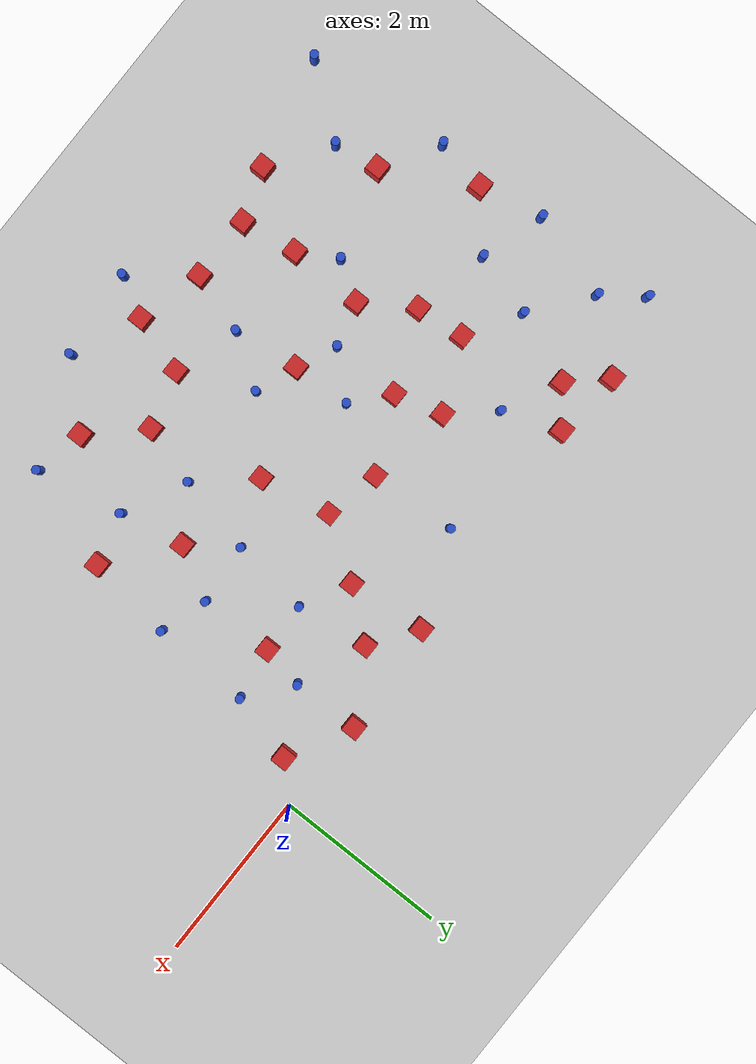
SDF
<sdf version="1.6">
 <world name="default">
  <model name="ground_plane">
   <static>1</static>
   <link name="link">
    <collision name="collision">
     <geometry><plane><normal>0 0 1</normal><size>100 100</size></plane></geometry>
     <surface><friction><ode><mu>100</mu><mu2>50</mu2></ode></friction></surface>
    </collision>
    <visual name="visual">
     <cast_shadows>0</cast_shadows>
     <geometry><plane><normal>0 0 1</normal><size>100 100</size></plane></geometry>
     <material>
      <ambient>1.0 1.0 1.0 1.0</ambient>
      <diffuse>0.8 0.8 0.8 1.0</diffuse>
      <specular>0.01 0.01 0.01 1.000000</specular>
     </material>
    </visual>
   </link>
  </model>
  <model name="square_post_obstacle2">
   <static>true</static>
   <pose>-1.51511103685 -2.70008795254 1.91545236811e-07 -7.35059704564e-06 1.12565212e-07 2.39332434364e-05</pose>
   <link name="link">
    <pose>0 0 0.25 0 -0 0</pose>
    <inertial>
     <mass>100</mass>
     <inertia>
      <ixx>0.166667</ixx>
      <ixy>0</ixy>
      <ixz>0</ixz>
      <iyy>0.166667</iyy>
      <iyz>0</iyz>
      <izz>0.166667</izz>
     </inertia>
    </inertial>
    <collision name="collision"><geometry><box><size>.2 .2 .5</size></box></geometry></collision>
    <visual name="visual">
     <geometry><box><size>.2 .2 .5</size></box></geometry>
     <material>
      <script><name>Gazebo/Red</name><uri>file://media/materials/scripts/gazebo.material</uri></script>
     </material>
    </visual>
   </link>
  </model>
  <model name="square_post_obstacle4">
   <static>true</static>
   <pose>-2.33833968254 -0.990381652567 1.91545236811e-07 -7.35059704564e-06 1.12565212e-07 2.39332434364e-05</pose>
   <link name="link">
    <pose>0 0 0.25 0 -0 0</pose>
    <inertial>
     <mass>100</mass>
     <inertia>
      <ixx>0.166667</ixx>
      <ixy>0</ixy>
      <ixz>0</ixz>
      <iyy>0.166667</iyy>
      <iyz>0</iyz>
      <izz>0.166667</izz>
     </inertia>
    </inertial>
    <collision name="collision"><geometry><box><size>.2 .2 .5</size></box></geometry></collision>
    <visual name="visual">
     <geometry><box><size>.2 .2 .5</size></box></geometry>
     <material>
      <script><name>Gazebo/Red</name><uri>file://media/materials/scripts/gazebo.material</uri></script>
     </material>
    </visual>
   </link>
  </model>
  <model name="pole_obstacle7">
   <static>true</static>
   <pose>-5.82277661758 -1.37810416968 7.38925637345e-09 -8.471706928e-08 1.24976765134e-08 -1.74513093015e-07</pose>
   <link name="link">
    <pose>0 0 0.3 0 -0 0</pose>
    <inertial>
     <mass>1</mass>
     <inertia><ixx>0.145833</ixx><ixy>0</ixy><ixz>0</ixz><iyy>0.145833</iyy><iyz>0</iyz><izz>0.125</izz></inertia>
    </inertial>
    <collision name="collision">
     <geometry><cylinder><radius>0.05</radius><length>.6</length></cylinder></geometry>
    </collision>
    <visual name="visual">
     <geometry><cylinder><radius>0.05</radius><length>.6</length></cylinder></geometry>
     <material>
      <script><name>Gazebo/Blue</name><uri>file://media/materials/scripts/gazebo.material</uri></script>
     </material>
    </visual>
   </link>
  </model>
  <model name="pole_obstacle8">
   <static>true</static>
   <pose>-1.16569219605 -4.44366886256 7.38925637345e-09 -8.47170692799e-08 1.24976765033e-08 -1.74513093018e-07</pose>
   <link name="link">
    <pose>0 0 0.3 0 -0 0</pose>
    <inertial>
     <mass>1</mass>
     <inertia><ixx>0.145833</ixx><ixy>0</ixy><ixz>0</ixz><iyy>0.145833</iyy><iyz>0</iyz><izz>0.125</izz></inertia>
    </inertial>
    <collision name="collision">
     <geometry><cylinder><radius>0.05</radius><length>.6</length></cylinder></geometry>
    </collision>
    <visual name="visual">
     <geometry><cylinder><radius>0.05</radius><length>.6</length></cylinder></geometry>
     <material>
      <script><name>Gazebo/Blue</name><uri>file://media/materials/scripts/gazebo.material</uri></script>
     </material>
    </visual>
   </link>
  </model>
  <model name="pole_obstacle25">
   <static>true</static>
   <pose>-3.83814363282 -2.26992411811 7.38925637345e-09 -8.471706928e-08 1.24976765098e-08 -1.74513093016e-07</pose>
   <link name="link">
    <pose>0 0 0.3 0 -0 0</pose>
    <inertial>
     <mass>1</mass>
     <inertia><ixx>0.145833</ixx><ixy>0</ixy><ixz>0</ixz><iyy>0.145833</iyy><iyz>0</iyz><izz>0.125</izz></inertia>
    </inertial>
    <collision name="collision">
     <geometry><cylinder><radius>0.05</radius><length>.6</length></cylinder></geometry>
    </collision>
    <visual name="visual">
     <geometry><cylinder><radius>0.05</radius><length>.6</length></cylinder></geometry>
     <material>
      <script><name>Gazebo/Blue</name><uri>file://media/materials/scripts/gazebo.material</uri></script>
     </material>
    </visual>
   </link>
  </model>
  <model name="square_post_obstacle23">
   <static>true</static>
   <pose>-1.75846465209 -4.32358583733 1.91545236811e-07 -7.35059704564e-06 1.12565212e-07 2.39332434364e-05</pose>
   <link name="link">
    <pose>0 0 0.25 0 -0 0</pose>
    <inertial>
     <mass>100</mass>
     <inertia>
      <ixx>0.166667</ixx>
      <ixy>0</ixy>
      <ixz>0</ixz>
      <iyy>0.166667</iyy>
      <iyz>0</iyz>
      <izz>0.166667</izz>
     </inertia>
    </inertial>
    <collision name="collision"><geometry><box><size>.2 .2 .5</size></box></geometry></collision>
    <visual name="visual">
     <geometry><box><size>.2 .2 .5</size></box></geometry>
     <material>
      <script><name>Gazebo/Red</name><uri>file://media/materials/scripts/gazebo.material</uri></script>
     </material>
    </visual>
   </link>
  </model>
  <model name="pole_obstacle32">
   <static>true</static>
   <pose>-5.97992895814 -4.13236150903 7.38925637345e-09 -8.47170692796e-08 1.24976764786e-08 -1.74513093032e-07</pose>
   <link name="link">
    <pose>0 0 0.3 0 -0 0</pose>
    <inertial>
     <mass>1</mass>
     <inertia><ixx>0.145833</ixx><ixy>0</ixy><ixz>0</ixz><iyy>0.145833</iyy><iyz>0</iyz><izz>0.125</izz></inertia>
    </inertial>
    <collision name="collision">
     <geometry><cylinder><radius>0.05</radius><length>.6</length></cylinder></geometry>
    </collision>
    <visual name="visual">
     <geometry><cylinder><radius>0.05</radius><length>.6</length></cylinder></geometry>
     <material>
      <script><name>Gazebo/Blue</name><uri>file://media/materials/scripts/gazebo.material</uri></script>
     </material>
    </visual>
   </link>
  </model>
  <model name="pole_obstacle42">
   <static>true</static>
   <pose>-6.71349716773 -3.21704806443 7.38925637345e-09 -8.47170692798e-08 1.24976764937e-08 -1.74513093023e-07</pose>
   <link name="link">
    <pose>0 0 0.3 0 -0 0</pose>
    <inertial>
     <mass>1</mass>
     <inertia><ixx>0.145833</ixx><ixy>0</ixy><ixz>0</ixz><iyy>0.145833</iyy><iyz>0</iyz><izz>0.125</izz></inertia>
    </inertial>
    <collision name="collision">
     <geometry><cylinder><radius>0.05</radius><length>.6</length></cylinder></geometry>
    </collision>
    <visual name="visual">
     <geometry><cylinder><radius>0.05</radius><length>.6</length></cylinder></geometry>
     <material>
      <script><name>Gazebo/Blue</name><uri>file://media/materials/scripts/gazebo.material</uri></script>
     </material>
    </visual>
   </link>
  </model>
  <model name="pole_obstacle46">
   <static>true</static>
   <pose>-6.02859896482 -2.10779490157 7.38925637345e-09 -8.47170692798e-08 1.24976764937e-08 -1.74513093023e-07</pose>
   <link name="link">
    <pose>0 0 0.3 0 -0 0</pose>
    <inertial>
     <mass>1</mass>
     <inertia><ixx>0.145833</ixx><ixy>0</ixy><ixz>0</ixz><iyy>0.145833</iyy><iyz>0</iyz><izz>0.125</izz></inertia>
    </inertial>
    <collision name="collision">
     <geometry><cylinder><radius>0.05</radius><length>.6</length></cylinder></geometry>
    </collision>
    <visual name="visual">
     <geometry><cylinder><radius>0.05</radius><length>.6</length></cylinder></geometry>
     <material>
      <script><name>Gazebo/Blue</name><uri>file://media/materials/scripts/gazebo.material</uri></script>
     </material>
    </visual>
   </link>
  </model>
  <model name="pole_obstacle48">
   <static>true</static>
   <pose>-6.57164669023 -4.90194749988 7.38925637345e-09 -8.47170692796e-08 1.24976764786e-08 -1.74513093032e-07</pose>
   <link name="link">
    <pose>0 0 0.3 0 -0 0</pose>
    <inertial>
     <mass>1</mass>
     <inertia><ixx>0.145833</ixx><ixy>0</ixy><ixz>0</ixz><iyy>0.145833</iyy><iyz>0</iyz><izz>0.125</izz></inertia>
    </inertial>
    <collision name="collision">
     <geometry><cylinder><radius>0.05</radius><length>.6</length></cylinder></geometry>
    </collision>
    <visual name="visual">
     <geometry><cylinder><radius>0.05</radius><length>.6</length></cylinder></geometry>
     <material>
      <script><name>Gazebo/Blue</name><uri>file://media/materials/scripts/gazebo.material</uri></script>
     </material>
    </visual>
   </link>
  </model>
  <model name="pole_obstacle55">
   <static>true</static>
   <pose>-6.76681579439 -1.87685258984 7.38925637345e-09 -8.471706928e-08 1.24976765134e-08 -1.74513093015e-07</pose>
   <link name="link">
    <pose>0 0 0.3 0 -0 0</pose>
    <inertial>
     <mass>1</mass>
     <inertia><ixx>0.145833</ixx><ixy>0</ixy><ixz>0</ixz><iyy>0.145833</iyy><iyz>0</iyz><izz>0.125</izz></inertia>
    </inertial>
    <collision name="collision">
     <geometry><cylinder><radius>0.05</radius><length>.6</length></cylinder></geometry>
    </collision>
    <visual name="visual">
     <geometry><cylinder><radius>0.05</radius><length>.6</length></cylinder></geometry>
     <material>
      <script><name>Gazebo/Blue</name><uri>file://media/materials/scripts/gazebo.material</uri></script>
     </material>
    </visual>
   </link>
  </model>
  <model name="pole_obstacle60">
   <static>true</static>
   <pose>-2.08946010397 -3.08332775277 7.38925637345e-09 -8.47170692798e-08 1.24976764939e-08 -1.74513093025e-07</pose>
   <link name="link">
    <pose>0 0 0.3 0 -0 0</pose>
    <inertial>
     <mass>1</mass>
     <inertia><ixx>0.145833</ixx><ixy>0</ixy><ixz>0</ixz><iyy>0.145833</iyy><iyz>0</iyz><izz>0.125</izz></inertia>
    </inertial>
    <collision name="collision">
     <geometry><cylinder><radius>0.05</radius><length>.6</length></cylinder></geometry>
    </collision>
    <visual name="visual">
     <geometry><cylinder><radius>0.05</radius><length>.6</length></cylinder></geometry>
     <material>
      <script><name>Gazebo/Blue</name><uri>file://media/materials/scripts/gazebo.material</uri></script>
     </material>
    </visual>
   </link>
  </model>
  <model name="pole_obstacle62">
   <static>true</static>
   <pose>-3.70640053581 -3.70622703195 7.38925637345e-09 -8.47170692798e-08 1.24976764939e-08 -1.74513093025e-07</pose>
   <link name="link">
    <pose>0 0 0.3 0 -0 0</pose>
    <inertial>
     <mass>1</mass>
     <inertia><ixx>0.145833</ixx><ixy>0</ixy><ixz>0</ixz><iyy>0.145833</iyy><iyz>0</iyz><izz>0.125</izz></inertia>
    </inertial>
    <collision name="collision">
     <geometry><cylinder><radius>0.05</radius><length>.6</length></cylinder></geometry>
    </collision>
    <visual name="visual">
     <geometry><cylinder><radius>0.05</radius><length>.6</length></cylinder></geometry>
     <material>
      <script><name>Gazebo/Blue</name><uri>file://media/materials/scripts/gazebo.material</uri></script>
     </material>
    </visual>
   </link>
  </model>
  <model name="pole_obstacle63">
   <static>true</static>
   <pose>-1.36244593181 -3.44188853338 7.38925637345e-09 -8.47170692799e-08 1.24976765053e-08 -1.74513093017e-07</pose>
   <link name="link">
    <pose>0 0 0.3 0 -0 0</pose>
    <inertial>
     <mass>1</mass>
     <inertia><ixx>0.145833</ixx><ixy>0</ixy><ixz>0</ixz><iyy>0.145833</iyy><iyz>0</iyz><izz>0.125</izz></inertia>
    </inertial>
    <collision name="collision">
     <geometry><cylinder><radius>0.05</radius><length>.6</length></cylinder></geometry>
    </collision>
    <visual name="visual">
     <geometry><cylinder><radius>0.05</radius><length>.6</length></cylinder></geometry>
     <material>
      <script><name>Gazebo/Blue</name><uri>file://media/materials/scripts/gazebo.material</uri></script>
     </material>
    </visual>
   </link>
  </model>
  <model name="pole_obstacle69">
   <static>true</static>
   <pose>-3.48152343785 -0.528420452752 7.38925637345e-09 -8.471706928e-08 1.24976765186e-08 -1.74513093012e-07</pose>
   <link name="link">
    <pose>0 0 0.3 0 -0 0</pose>
    <inertial>
     <mass>1</mass>
     <inertia><ixx>0.145833</ixx><ixy>0</ixy><ixz>0</ixz><iyy>0.145833</iyy><iyz>0</iyz><izz>0.125</izz></inertia>
    </inertial>
    <collision name="collision">
     <geometry><cylinder><radius>0.05</radius><length>.6</length></cylinder></geometry>
    </collision>
    <visual name="visual">
     <geometry><cylinder><radius>0.05</radius><length>.6</length></cylinder></geometry>
     <material>
      <script><name>Gazebo/Blue</name><uri>file://media/materials/scripts/gazebo.material</uri></script>
     </material>
    </visual>
   </link>
  </model>
  <model name="square_post_obstacle59">
   <static>true</static>
   <pose>-4.40304220472 -1.37637271803 1.91545236811e-07 -7.35059704564e-06 1.12565212e-07 2.39332434364e-05</pose>
   <link name="link">
    <pose>0 0 0.25 0 -0 0</pose>
    <inertial>
     <mass>100</mass>
     <inertia>
      <ixx>0.166667</ixx>
      <ixy>0</ixy>
      <ixz>0</ixz>
      <iyy>0.166667</iyy>
      <iyz>0</iyz>
      <izz>0.166667</izz>
     </inertia>
    </inertial>
    <collision name="collision"><geometry><box><size>.2 .2 .5</size></box></geometry></collision>
    <visual name="visual">
     <geometry><box><size>.2 .2 .5</size></box></geometry>
     <material>
      <script><name>Gazebo/Red</name><uri>file://media/materials/scripts/gazebo.material</uri></script>
     </material>
    </visual>
   </link>
  </model>
  <model name="pole_obstacle78">
   <static>true</static>
   <pose>-4.26335947664 -2.73864380337 7.38925637345e-09 -8.47170692798e-08 1.24976764937e-08 -1.74513093023e-07</pose>
   <link name="link">
    <pose>0 0 0.3 0 -0 0</pose>
    <inertial>
     <mass>1</mass>
     <inertia><ixx>0.145833</ixx><ixy>0</ixy><ixz>0</ixz><iyy>0.145833</iyy><iyz>0</iyz><izz>0.125</izz></inertia>
    </inertial>
    <collision name="collision">
     <geometry><cylinder><radius>0.05</radius><length>.6</length></cylinder></geometry>
    </collision>
    <visual name="visual">
     <geometry><cylinder><radius>0.05</radius><length>.6</length></cylinder></geometry>
     <material>
      <script><name>Gazebo/Blue</name><uri>file://media/materials/scripts/gazebo.material</uri></script>
     </material>
    </visual>
   </link>
  </model>
  <model name="square_post_obstacle69">
   <static>true</static>
   <pose>-2.29151813192 -3.76190170687 1.91545236811e-07 -7.35059704564e-06 1.12565212e-07 2.39332434364e-05</pose>
   <link name="link">
    <pose>0 0 0.25 0 -0 0</pose>
    <inertial>
     <mass>100</mass>
     <inertia>
      <ixx>0.166667</ixx>
      <ixy>0</ixy>
      <ixz>0</ixz>
      <iyy>0.166667</iyy>
      <iyz>0</iyz>
      <izz>0.166667</izz>
     </inertia>
    </inertial>
    <collision name="collision"><geometry><box><size>.2 .2 .5</size></box></geometry></collision>
    <visual name="visual">
     <geometry><box><size>.2 .2 .5</size></box></geometry>
     <material>
      <script><name>Gazebo/Red</name><uri>file://media/materials/scripts/gazebo.material</uri></script>
     </material>
    </visual>
   </link>
  </model>
  <model name="square_post_obstacle71">
   <static>true</static>
   <pose>-5.28626475627 -4.59389521668 1.91545236811e-07 -7.35059704564e-06 1.12565212e-07 2.39332434364e-05</pose>
   <link name="link">
    <pose>0 0 0.25 0 -0 0</pose>
    <inertial>
     <mass>100</mass>
     <inertia>
      <ixx>0.166667</ixx>
      <ixy>0</ixy>
      <ixz>0</ixz>
      <iyy>0.166667</iyy>
      <iyz>0</iyz>
      <izz>0.166667</izz>
     </inertia>
    </inertial>
    <collision name="collision"><geometry><box><size>.2 .2 .5</size></box></geometry></collision>
    <visual name="visual">
     <geometry><box><size>.2 .2 .5</size></box></geometry>
     <material>
      <script><name>Gazebo/Red</name><uri>file://media/materials/scripts/gazebo.material</uri></script>
     </material>
    </visual>
   </link>
  </model>
  <model name="square_post_obstacle72">
   <static>true</static>
   <pose>-3.16414612756 -4.601201893 1.91545236811e-07 -7.35059704564e-06 1.12565212e-07 2.39332434364e-05</pose>
   <link name="link">
    <pose>0 0 0.25 0 -0 0</pose>
    <inertial>
     <mass>100</mass>
     <inertia>
      <ixx>0.166667</ixx>
      <ixy>0</ixy>
      <ixz>0</ixz>
      <iyy>0.166667</iyy>
      <iyz>0</iyz>
      <izz>0.166667</izz>
     </inertia>
    </inertial>
    <collision name="collision"><geometry><box><size>.2 .2 .5</size></box></geometry></collision>
    <visual name="visual">
     <geometry><box><size>.2 .2 .5</size></box></geometry>
     <material>
      <script><name>Gazebo/Red</name><uri>file://media/materials/scripts/gazebo.material</uri></script>
     </material>
    </visual>
   </link>
  </model>
  <model name="square_post_obstacle73">
   <static>true</static>
   <pose>-1.12953591305 0.00598404987416 1.91545236811e-07 -7.35059704564e-06 1.12565212e-07 2.39332434364e-05</pose>
   <link name="link">
    <pose>0 0 0.25 0 -0 0</pose>
    <inertial>
     <mass>100</mass>
     <inertia>
      <ixx>0.166667</ixx>
      <ixy>0</ixy>
      <ixz>0</ixz>
      <iyy>0.166667</iyy>
      <iyz>0</iyz>
      <izz>0.166667</izz>
     </inertia>
    </inertial>
    <collision name="collision"><geometry><box><size>.2 .2 .5</size></box></geometry></collision>
    <visual name="visual">
     <geometry><box><size>.2 .2 .5</size></box></geometry>
     <material>
      <script><name>Gazebo/Red</name><uri>file://media/materials/scripts/gazebo.material</uri></script>
     </material>
    </visual>
   </link>
  </model>
  <model name="square_post_obstacle76">
   <static>true</static>
   <pose>-4.24524388632 -1.92383979188 1.91545236811e-07 -7.35059704564e-06 1.12565212e-07 2.39332434364e-05</pose>
   <link name="link">
    <pose>0 0 0.25 0 -0 0</pose>
    <inertial>
     <mass>100</mass>
     <inertia>
      <ixx>0.166667</ixx>
      <ixy>0</ixy>
      <ixz>0</ixz>
      <iyy>0.166667</iyy>
      <iyz>0</iyz>
      <izz>0.166667</izz>
     </inertia>
    </inertial>
    <collision name="collision"><geometry><box><size>.2 .2 .5</size></box></geometry></collision>
    <visual name="visual">
     <geometry><box><size>.2 .2 .5</size></box></geometry>
     <material>
      <script><name>Gazebo/Red</name><uri>file://media/materials/scripts/gazebo.material</uri></script>
     </material>
    </visual>
   </link>
  </model>
  <model name="square_post_obstacle77">
   <static>true</static>
   <pose>-5.20255923192 -1.74248049154 1.91545236811e-07 -7.35059704564e-06 1.12565212e-07 2.39332434364e-05</pose>
   <link name="link">
    <pose>0 0 0.25 0 -0 0</pose>
    <inertial>
     <mass>100</mass>
     <inertia>
      <ixx>0.166667</ixx>
      <ixy>0</ixy>
      <ixz>0</ixz>
      <iyy>0.166667</iyy>
      <iyz>0</iyz>
      <izz>0.166667</izz>
     </inertia>
    </inertial>
    <collision name="collision"><geometry><box><size>.2 .2 .5</size></box></geometry></collision>
    <visual name="visual">
     <geometry><box><size>.2 .2 .5</size></box></geometry>
     <material>
      <script><name>Gazebo/Red</name><uri>file://media/materials/scripts/gazebo.material</uri></script>
     </material>
    </visual>
   </link>
  </model>
  <model name="square_post_obstacle83">
   <static>true</static>
   <pose>-2.62159585337 -2.48523165753 1.91545236811e-07 -7.35059704564e-06 1.12565212e-07 2.39332434364e-05</pose>
   <link name="link">
    <pose>0 0 0.25 0 -0 0</pose>
    <inertial>
     <mass>100</mass>
     <inertia>
      <ixx>0.166667</ixx>
      <ixy>0</ixy>
      <ixz>0</ixz>
      <iyy>0.166667</iyy>
      <iyz>0</iyz>
      <izz>0.166667</izz>
     </inertia>
    </inertial>
    <collision name="collision"><geometry><box><size>.2 .2 .5</size></box></geometry></collision>
    <visual name="visual">
     <geometry><box><size>.2 .2 .5</size></box></geometry>
     <material>
      <script><name>Gazebo/Red</name><uri>file://media/materials/scripts/gazebo.material</uri></script>
     </material>
    </visual>
   </link>
  </model>
  <model name="pole_obstacle91">
   <static>true</static>
   <pose>-0.601110506449 -1.16471417501 7.38925637345e-09 -8.47170692799e-08 1.24976765033e-08 -1.7451309302e-07</pose>
   <link name="link">
    <pose>0 0 0.3 0 -0 0</pose>
    <inertial>
     <mass>1</mass>
     <inertia><ixx>0.145833</ixx><ixy>0</ixy><ixz>0</ixz><iyy>0.145833</iyy><iyz>0</iyz><izz>0.125</izz></inertia>
    </inertial>
    <collision name="collision">
     <geometry><cylinder><radius>0.05</radius><length>.6</length></cylinder></geometry>
    </collision>
    <visual name="visual">
     <geometry><cylinder><radius>0.05</radius><length>.6</length></cylinder></geometry>
     <material>
      <script><name>Gazebo/Blue</name><uri>file://media/materials/scripts/gazebo.material</uri></script>
     </material>
    </visual>
   </link>
  </model>
  <model name="pole_obstacle94">
   <static>true</static>
   <pose>-6.47978045795 -0.872698090622 7.38925637345e-09 -8.47170692799e-08 1.24976765038e-08 -1.74513093018e-07</pose>
   <link name="link">
    <pose>0 0 0.3 0 -0 0</pose>
    <inertial>
     <mass>1</mass>
     <inertia><ixx>0.145833</ixx><ixy>0</ixy><ixz>0</ixz><iyy>0.145833</iyy><iyz>0</iyz><izz>0.125</izz></inertia>
    </inertial>
    <collision name="collision">
     <geometry><cylinder><radius>0.05</radius><length>.6</length></cylinder></geometry>
    </collision>
    <visual name="visual">
     <geometry><cylinder><radius>0.05</radius><length>.6</length></cylinder></geometry>
     <material>
      <script><name>Gazebo/Blue</name><uri>file://media/materials/scripts/gazebo.material</uri></script>
     </material>
    </visual>
   </link>
  </model>
  <model name="pole_obstacle99">
   <static>true</static>
   <pose>-1.10928914246 -0.769652189861 7.38925637345e-09 -8.47170692799e-08 1.24976765075e-08 -1.74513093017e-07</pose>
   <link name="link">
    <pose>0 0 0.3 0 -0 0</pose>
    <inertial>
     <mass>1</mass>
     <inertia><ixx>0.145833</ixx><ixy>0</ixy><ixz>0</ixz><iyy>0.145833</iyy><iyz>0</iyz><izz>0.125</izz></inertia>
    </inertial>
    <collision name="collision">
     <geometry><cylinder><radius>0.05</radius><length>.6</length></cylinder></geometry>
    </collision>
    <visual name="visual">
     <geometry><cylinder><radius>0.05</radius><length>.6</length></cylinder></geometry>
     <material>
      <script><name>Gazebo/Blue</name><uri>file://media/materials/scripts/gazebo.material</uri></script>
     </material>
    </visual>
   </link>
  </model>
  <model name="square_post_obstacle105">
   <static>true</static>
   <pose>-3.4201781287 -1.52765485613 1.91545236811e-07 -7.35059704564e-06 1.12565212e-07 2.39332434364e-05</pose>
   <link name="link">
    <pose>0 0 0.25 0 -0 0</pose>
    <inertial>
     <mass>100</mass>
     <inertia>
      <ixx>0.166667</ixx>
      <ixy>0</ixy>
      <ixz>0</ixz>
      <iyy>0.166667</iyy>
      <iyz>0</iyz>
      <izz>0.166667</izz>
     </inertia>
    </inertial>
    <collision name="collision"><geometry><box><size>.2 .2 .5</size></box></geometry></collision>
    <visual name="visual">
     <geometry><box><size>.2 .2 .5</size></box></geometry>
     <material>
      <script><name>Gazebo/Red</name><uri>file://media/materials/scripts/gazebo.material</uri></script>
     </material>
    </visual>
   </link>
  </model>
  <model name="square_post_obstacle108">
   <static>true</static>
   <pose>-2.42450614583 -0.0902251532649 1.91545236811e-07 -7.35059704564e-06 1.12565212e-07 2.39332434364e-05</pose>
   <link name="link">
    <pose>0 0 0.25 0 -0 0</pose>
    <inertial>
     <mass>100</mass>
     <inertia>
      <ixx>0.166667</ixx>
      <ixy>0</ixy>
      <ixz>0</ixz>
      <iyy>0.166667</iyy>
      <iyz>0</iyz>
      <izz>0.166667</izz>
     </inertia>
    </inertial>
    <collision name="collision"><geometry><box><size>.2 .2 .5</size></box></geometry></collision>
    <visual name="visual">
     <geometry><box><size>.2 .2 .5</size></box></geometry>
     <material>
      <script><name>Gazebo/Red</name><uri>file://media/materials/scripts/gazebo.material</uri></script>
     </material>
    </visual>
   </link>
  </model>
  <model name="square_post_obstacle111">
   <static>true</static>
   <pose>-0.39377817921 -0.386107867339 1.91545236811e-07 -7.35059704564e-06 1.12565212e-07 2.39332434364e-05</pose>
   <link name="link">
    <pose>0 0 0.25 0 -0 0</pose>
    <inertial>
     <mass>100</mass>
     <inertia>
      <ixx>0.166667</ixx>
      <ixy>0</ixy>
      <ixz>0</ixz>
      <iyy>0.166667</iyy>
      <iyz>0</iyz>
      <izz>0.166667</izz>
     </inertia>
    </inertial>
    <collision name="collision"><geometry><box><size>.2 .2 .5</size></box></geometry></collision>
    <visual name="visual">
     <geometry><box><size>.2 .2 .5</size></box></geometry>
     <material>
      <script><name>Gazebo/Red</name><uri>file://media/materials/scripts/gazebo.material</uri></script>
     </material>
    </visual>
   </link>
  </model>
  <model name="square_post_obstacle114">
   <static>true</static>
   <pose>-2.7820079021 -1.66595649302 1.91545236811e-07 -7.35059704564e-06 1.12565212e-07 2.39332434364e-05</pose>
   <link name="link">
    <pose>0 0 0.25 0 -0 0</pose>
    <inertial>
     <mass>100</mass>
     <inertia>
      <ixx>0.166667</ixx>
      <ixy>0</ixy>
      <ixz>0</ixz>
      <iyy>0.166667</iyy>
      <iyz>0</iyz>
      <izz>0.166667</izz>
     </inertia>
    </inertial>
    <collision name="collision"><geometry><box><size>.2 .2 .5</size></box></geometry></collision>
    <visual name="visual">
     <geometry><box><size>.2 .2 .5</size></box></geometry>
     <material>
      <script><name>Gazebo/Red</name><uri>file://media/materials/scripts/gazebo.material</uri></script>
     </material>
    </visual>
   </link>
  </model>
  <model name="square_post_obstacle117">
   <static>true</static>
   <pose>-5.07721141489 -0.248700163246 1.91545236811e-07 -7.35059704564e-06 1.12565212e-07 2.39332434364e-05</pose>
   <link name="link">
    <pose>0 0 0.25 0 -0 0</pose>
    <inertial>
     <mass>100</mass>
     <inertia>
      <ixx>0.166667</ixx>
      <ixy>0</ixy>
      <ixz>0</ixz>
      <iyy>0.166667</iyy>
      <iyz>0</iyz>
      <izz>0.166667</izz>
     </inertia>
    </inertial>
    <collision name="collision"><geometry><box><size>.2 .2 .5</size></box></geometry></collision>
    <visual name="visual">
     <geometry><box><size>.2 .2 .5</size></box></geometry>
     <material>
      <script><name>Gazebo/Red</name><uri>file://media/materials/scripts/gazebo.material</uri></script>
     </material>
    </visual>
   </link>
  </model>
  <model name="square_post_obstacle125">
   <static>true</static>
   <pose>-5.86907202245 -0.171992372443 1.91545236811e-07 -7.35059704564e-06 1.12565212e-07 2.39332434364e-05</pose>
   <link name="link">
    <pose>0 0 0.25 0 -0 0</pose>
    <inertial>
     <mass>100</mass>
     <inertia>
      <ixx>0.166667</ixx>
      <ixy>0</ixy>
      <ixz>0</ixz>
      <iyy>0.166667</iyy>
      <iyz>0</iyz>
      <izz>0.166667</izz>
     </inertia>
    </inertial>
    <collision name="collision"><geometry><box><size>.2 .2 .5</size></box></geometry></collision>
    <visual name="visual">
     <geometry><box><size>.2 .2 .5</size></box></geometry>
     <material>
      <script><name>Gazebo/Red</name><uri>file://media/materials/scripts/gazebo.material</uri></script>
     </material>
    </visual>
   </link>
  </model>
  <model name="pole_obstacle132">
   <static>true</static>
   <pose>-1.78376334322 -1.28713373737 7.38925637345e-09 -8.471706928e-08 1.24976765079e-08 -1.74513093017e-07</pose>
   <link name="link">
    <pose>0 0 0.3 0 -0 0</pose>
    <inertial>
     <mass>1</mass>
     <inertia><ixx>0.145833</ixx><ixy>0</ixy><ixz>0</ixz><iyy>0.145833</iyy><iyz>0</iyz><izz>0.125</izz></inertia>
    </inertial>
    <collision name="collision">
     <geometry><cylinder><radius>0.05</radius><length>.6</length></cylinder></geometry>
    </collision>
    <visual name="visual">
     <geometry><cylinder><radius>0.05</radius><length>.6</length></cylinder></geometry>
     <material>
      <script><name>Gazebo/Blue</name><uri>file://media/materials/scripts/gazebo.material</uri></script>
     </material>
    </visual>
   </link>
  </model>
  <model name="pole_obstacle135">
   <static>true</static>
   <pose>-0.639941950182 -2.29333319026 7.38925637345e-09 -8.47170692799e-08 1.2497676509e-08 -1.74513093016e-07</pose>
   <link name="link">
    <pose>0 0 0.3 0 -0 0</pose>
    <inertial>
     <mass>1</mass>
     <inertia><ixx>0.145833</ixx><ixy>0</ixy><ixz>0</ixz><iyy>0.145833</iyy><iyz>0</iyz><izz>0.125</izz></inertia>
    </inertial>
    <collision name="collision">
     <geometry><cylinder><radius>0.05</radius><length>.6</length></cylinder></geometry>
    </collision>
    <visual name="visual">
     <geometry><cylinder><radius>0.05</radius><length>.6</length></cylinder></geometry>
     <material>
      <script><name>Gazebo/Blue</name><uri>file://media/materials/scripts/gazebo.material</uri></script>
     </material>
    </visual>
   </link>
  </model>
  <model name="square_post_obstacle144">
   <static>true</static>
   <pose>-6.60435402547 -2.6121392764 1.91545236811e-07 -7.35059704564e-06 1.12565212e-07 2.39332434364e-05</pose>
   <link name="link">
    <pose>0 0 0.25 0 -0 0</pose>
    <inertial>
     <mass>100</mass>
     <inertia>
      <ixx>0.166667</ixx>
      <ixy>0</ixy>
      <ixz>0</ixz>
      <iyy>0.166667</iyy>
      <iyz>0</iyz>
      <izz>0.166667</izz>
     </inertia>
    </inertial>
    <collision name="collision"><geometry><box><size>.2 .2 .5</size></box></geometry></collision>
    <visual name="visual">
     <geometry><box><size>.2 .2 .5</size></box></geometry>
     <material>
      <script><name>Gazebo/Red</name><uri>file://media/materials/scripts/gazebo.material</uri></script>
     </material>
    </visual>
   </link>
  </model>
  <model name="square_post_obstacle150">
   <static>true</static>
   <pose>-6.05945782605 -3.61020862612 1.91545236811e-07 -7.35059704564e-06 1.12565212e-07 2.39332434364e-05</pose>
   <link name="link">
    <pose>0 0 0.25 0 -0 0</pose>
    <inertial>
     <mass>100</mass>
     <inertia>
      <ixx>0.166667</ixx>
      <ixy>0</ixy>
      <ixz>0</ixz>
      <iyy>0.166667</iyy>
      <iyz>0</iyz>
      <izz>0.166667</izz>
     </inertia>
    </inertial>
    <collision name="collision"><geometry><box><size>.2 .2 .5</size></box></geometry></collision>
    <visual name="visual">
     <geometry><box><size>.2 .2 .5</size></box></geometry>
     <material>
      <script><name>Gazebo/Red</name><uri>file://media/materials/scripts/gazebo.material</uri></script>
     </material>
    </visual>
   </link>
  </model>
  <model name="pole_obstacle154">
   <static>true</static>
   <pose>-5.03625011523 -3.30498098908 7.38925637345e-09 -8.47170692798e-08 1.24976764937e-08 -1.74513093023e-07</pose>
   <link name="link">
    <pose>0 0 0.3 0 -0 0</pose>
    <inertial>
     <mass>1</mass>
     <inertia><ixx>0.145833</ixx><ixy>0</ixy><ixz>0</ixz><iyy>0.145833</iyy><iyz>0</iyz><izz>0.125</izz></inertia>
    </inertial>
    <collision name="collision">
     <geometry><cylinder><radius>0.05</radius><length>.6</length></cylinder></geometry>
    </collision>
    <visual name="visual">
     <geometry><cylinder><radius>0.05</radius><length>.6</length></cylinder></geometry>
     <material>
      <script><name>Gazebo/Blue</name><uri>file://media/materials/scripts/gazebo.material</uri></script>
     </material>
    </visual>
   </link>
  </model>
  <model name="square_post_obstacle151">
   <static>true</static>
   <pose>-4.68260098751 -4.39165928622 1.91545236811e-07 -7.35059704564e-06 1.12565212e-07 2.39332434364e-05</pose>
   <link name="link">
    <pose>0 0 0.25 0 -0 0</pose>
    <inertial>
     <mass>100</mass>
     <inertia>
      <ixx>0.166667</ixx>
      <ixy>0</ixy>
      <ixz>0</ixz>
      <iyy>0.166667</iyy>
      <iyz>0</iyz>
      <izz>0.166667</izz>
     </inertia>
    </inertial>
    <collision name="collision"><geometry><box><size>.2 .2 .5</size></box></geometry></collision>
    <visual name="visual">
     <geometry><box><size>.2 .2 .5</size></box></geometry>
     <material>
      <script><name>Gazebo/Red</name><uri>file://media/materials/scripts/gazebo.material</uri></script>
     </material>
    </visual>
   </link>
  </model>
  <model name="pole_obstacle156">
   <static>true</static>
   <pose>-4.8320840359 -0.901345354863 7.38925637345e-09 -8.47170692799e-08 1.24976765038e-08 -1.74513093018e-07</pose>
   <link name="link">
    <pose>0 0 0.3 0 -0 0</pose>
    <inertial>
     <mass>1</mass>
     <inertia><ixx>0.145833</ixx><ixy>0</ixy><ixz>0</ixz><iyy>0.145833</iyy><iyz>0</iyz><izz>0.125</izz></inertia>
    </inertial>
    <collision name="collision">
     <geometry><cylinder><radius>0.05</radius><length>.6</length></cylinder></geometry>
    </collision>
    <visual name="visual">
     <geometry><cylinder><radius>0.05</radius><length>.6</length></cylinder></geometry>
     <material>
      <script><name>Gazebo/Blue</name><uri>file://media/materials/scripts/gazebo.material</uri></script>
     </material>
    </visual>
   </link>
  </model>
  <model name="pole_obstacle163">
   <static>true</static>
   <pose>-3.32477807731 -3.12412518898 7.38925637345e-09 -8.47170692798e-08 1.24976764939e-08 -1.74513093025e-07</pose>
   <link name="link">
    <pose>0 0 0.3 0 -0 0</pose>
    <inertial>
     <mass>1</mass>
     <inertia><ixx>0.145833</ixx><ixy>0</ixy><ixz>0</ixz><iyy>0.145833</iyy><iyz>0</iyz><izz>0.125</izz></inertia>
    </inertial>
    <collision name="collision">
     <geometry><cylinder><radius>0.05</radius><length>.6</length></cylinder></geometry>
    </collision>
    <visual name="visual">
     <geometry><cylinder><radius>0.05</radius><length>.6</length></cylinder></geometry>
     <material>
      <script><name>Gazebo/Blue</name><uri>file://media/materials/scripts/gazebo.material</uri></script>
     </material>
    </visual>
   </link>
  </model>
  <model name="pole_obstacle164">
   <static>true</static>
   <pose>-2.37839539047 -4.9546270268 7.38925637345e-09 -8.47170692798e-08 1.24976765033e-08 -1.74513093019e-07</pose>
   <link name="link">
    <pose>0 0 0.3 0 -0 0</pose>
    <inertial>
     <mass>1</mass>
     <inertia><ixx>0.145833</ixx><ixy>0</ixy><ixz>0</ixz><iyy>0.145833</iyy><iyz>0</iyz><izz>0.125</izz></inertia>
    </inertial>
    <collision name="collision">
     <geometry><cylinder><radius>0.05</radius><length>.6</length></cylinder></geometry>
    </collision>
    <visual name="visual">
     <geometry><cylinder><radius>0.05</radius><length>.6</length></cylinder></geometry>
     <material>
      <script><name>Gazebo/Blue</name><uri>file://media/materials/scripts/gazebo.material</uri></script>
     </material>
    </visual>
   </link>
  </model>
  <model name="square_post_obstacle155">
   <static>true</static>
   <pose>-3.80456735455 -2.94438208455 1.91545236811e-07 -7.35059704564e-06 1.12565212e-07 2.39332434364e-05</pose>
   <link name="link">
    <pose>0 0 0.25 0 -0 0</pose>
    <inertial>
     <mass>100</mass>
     <inertia>
      <ixx>0.166667</ixx>
      <ixy>0</ixy>
      <ixz>0</ixz>
      <iyy>0.166667</iyy>
      <iyz>0</iyz>
      <izz>0.166667</izz>
     </inertia>
    </inertial>
    <collision name="collision"><geometry><box><size>.2 .2 .5</size></box></geometry></collision>
    <visual name="visual">
     <geometry><box><size>.2 .2 .5</size></box></geometry>
     <material>
      <script><name>Gazebo/Red</name><uri>file://media/materials/scripts/gazebo.material</uri></script>
     </material>
    </visual>
   </link>
  </model>
  <model name="square_post_obstacle165">
   <static>true</static>
   <pose>-4.78273750739 -3.74313216309 1.91545236811e-07 -7.35059704564e-06 1.12565212e-07 2.39332434364e-05</pose>
   <link name="link">
    <pose>0 0 0.25 0 -0 0</pose>
    <inertial>
     <mass>100</mass>
     <inertia>
      <ixx>0.166667</ixx>
      <ixy>0</ixy>
      <ixz>0</ixz>
      <iyy>0.166667</iyy>
      <iyz>0</iyz>
      <izz>0.166667</izz>
     </inertia>
    </inertial>
    <collision name="collision"><geometry><box><size>.2 .2 .5</size></box></geometry></collision>
    <visual name="visual">
     <geometry><box><size>.2 .2 .5</size></box></geometry>
     <material>
      <script><name>Gazebo/Red</name><uri>file://media/materials/scripts/gazebo.material</uri></script>
     </material>
    </visual>
   </link>
  </model>
  <model name="square_post_obstacle190">
   <static>true</static>
   <pose>-0.767988262849 -3.29125544793 1.91545236811e-07 -7.35059704564e-06 1.12565212e-07 2.39332434364e-05</pose>
   <link name="link">
    <pose>0 0 0.25 0 -0 0</pose>
    <inertial>
     <mass>100</mass>
     <inertia>
      <ixx>0.166667</ixx>
      <ixy>0</ixy>
      <ixz>0</ixz>
      <iyy>0.166667</iyy>
      <iyz>0</iyz>
      <izz>0.166667</izz>
     </inertia>
    </inertial>
    <collision name="collision"><geometry><box><size>.2 .2 .5</size></box></geometry></collision>
    <visual name="visual">
     <geometry><box><size>.2 .2 .5</size></box></geometry>
     <material>
      <script><name>Gazebo/Red</name><uri>file://media/materials/scripts/gazebo.material</uri></script>
     </material>
    </visual>
   </link>
  </model>
  <model name="pole_obstacle187">
   <static>true</static>
   <pose>-1.89209213082 -2.18681872657 7.38925637345e-09 -8.47170692799e-08 1.24976765053e-08 -1.74513093017e-07</pose>
   <link name="link">
    <pose>0 0 0.3 0 -0 0</pose>
    <inertial>
     <mass>1</mass>
     <inertia><ixx>0.145833</ixx><ixy>0</ixy><ixz>0</ixz><iyy>0.145833</iyy><iyz>0</iyz><izz>0.125</izz></inertia>
    </inertial>
    <collision name="collision">
     <geometry><cylinder><radius>0.05</radius><length>.6</length></cylinder></geometry>
    </collision>
    <visual name="visual">
     <geometry><cylinder><radius>0.05</radius><length>.6</length></cylinder></geometry>
     <material>
      <script><name>Gazebo/Blue</name><uri>file://media/materials/scripts/gazebo.material</uri></script>
     </material>
    </visual>
   </link>
  </model>
  <model name="pole_obstacle188">
   <static>true</static>
   <pose>-1.19133492747 -2.11910427776 7.38925637345e-09 -8.47170692799e-08 1.24976765053e-08 -1.74513093017e-07</pose>
   <link name="link">
    <pose>0 0 0.3 0 -0 0</pose>
    <inertial>
     <mass>1</mass>
     <inertia><ixx>0.145833</ixx><ixy>0</ixy><ixz>0</ixz><iyy>0.145833</iyy><iyz>0</iyz><izz>0.125</izz></inertia>
    </inertial>
    <collision name="collision">
     <geometry><cylinder><radius>0.05</radius><length>.6</length></cylinder></geometry>
    </collision>
    <visual name="visual">
     <geometry><cylinder><radius>0.05</radius><length>.6</length></cylinder></geometry>
     <material>
      <script><name>Gazebo/Blue</name><uri>file://media/materials/scripts/gazebo.material</uri></script>
     </material>
    </visual>
   </link>
  </model>
  <model name="pole_obstacle189">
   <static>true</static>
   <pose>-6.80970296492 -0.426758697605 7.38925637345e-09 -8.47170692798e-08 1.24976765003e-08 -1.7451309302e-07</pose>
   <link name="link">
    <pose>0 0 0.3 0 -0 0</pose>
    <inertial>
     <mass>1</mass>
     <inertia><ixx>0.145833</ixx><ixy>0</ixy><ixz>0</ixz><iyy>0.145833</iyy><iyz>0</iyz><izz>0.125</izz></inertia>
    </inertial>
    <collision name="collision">
     <geometry><cylinder><radius>0.05</radius><length>.6</length></cylinder></geometry>
    </collision>
    <visual name="visual">
     <geometry><cylinder><radius>0.05</radius><length>.6</length></cylinder></geometry>
     <material>
      <script><name>Gazebo/Blue</name><uri>file://media/materials/scripts/gazebo.material</uri></script>
     </material>
    </visual>
   </link>
  </model>
  <model name="square_post_obstacle198">
   <static>true</static>
   <pose>-2.95496485515 -3.94373217478 1.91545236811e-07 -7.35059704564e-06 1.12565212e-07 2.39332434364e-05</pose>
   <link name="link">
    <pose>0 0 0.25 0 -0 0</pose>
    <inertial>
     <mass>100</mass>
     <inertia>
      <ixx>0.166667</ixx>
      <ixy>0</ixy>
      <ixz>0</ixz>
      <iyy>0.166667</iyy>
      <iyz>0</iyz>
      <izz>0.166667</izz>
     </inertia>
    </inertial>
    <collision name="collision"><geometry><box><size>.2 .2 .5</size></box></geometry></collision>
    <visual name="visual">
     <geometry><box><size>.2 .2 .5</size></box></geometry>
     <material>
      <script><name>Gazebo/Red</name><uri>file://media/materials/scripts/gazebo.material</uri></script>
     </material>
    </visual>
   </link>
  </model>
  <model name="square_post_obstacle200">
   <static>true</static>
   <pose>-3.92855167684 -4.39277544843 1.91545236811e-07 -7.35059704564e-06 1.12565212e-07 2.39332434364e-05</pose>
   <link name="link">
    <pose>0 0 0.25 0 -0 0</pose>
    <inertial>
     <mass>100</mass>
     <inertia>
      <ixx>0.166667</ixx>
      <ixy>0</ixy>
      <ixz>0</ixz>
      <iyy>0.166667</iyy>
      <iyz>0</iyz>
      <izz>0.166667</izz>
     </inertia>
    </inertial>
    <collision name="collision"><geometry><box><size>.2 .2 .5</size></box></geometry></collision>
    <visual name="visual">
     <geometry><box><size>.2 .2 .5</size></box></geometry>
     <material>
      <script><name>Gazebo/Red</name><uri>file://media/materials/scripts/gazebo.material</uri></script>
     </material>
    </visual>
   </link>
  </model>
  <model name="square_post_obstacle202">
   <static>true</static>
   <pose>-1.90344406507 -0.457993078074 1.91545236811e-07 -7.35059704564e-06 1.12565212e-07 2.39332434364e-05</pose>
   <link name="link">
    <pose>0 0 0.25 0 -0 0</pose>
    <inertial>
     <mass>100</mass>
     <inertia>
      <ixx>0.166667</ixx>
      <ixy>0</ixy>
      <ixz>0</ixz>
      <iyy>0.166667</iyy>
      <iyz>0</iyz>
      <izz>0.166667</izz>
     </inertia>
    </inertial>
    <collision name="collision"><geometry><box><size>.2 .2 .5</size></box></geometry></collision>
    <visual name="visual">
     <geometry><box><size>.2 .2 .5</size></box></geometry>
     <material>
      <script><name>Gazebo/Red</name><uri>file://media/materials/scripts/gazebo.material</uri></script>
     </material>
    </visual>
   </link>
  </model>
  <model name="pole_obstacle193">
   <static>true</static>
   <pose>-3.40861655487 -5.04924458804 7.38925637345e-09 -8.47170692798e-08 1.24976765033e-08 -1.74513093019e-07</pose>
   <link name="link">
    <pose>0 0 0.3 0 -0 0</pose>
    <inertial>
     <mass>1</mass>
     <inertia><ixx>0.145833</ixx><ixy>0</ixy><ixz>0</ixz><iyy>0.145833</iyy><iyz>0</iyz><izz>0.125</izz></inertia>
    </inertial>
    <collision name="collision">
     <geometry><cylinder><radius>0.05</radius><length>.6</length></cylinder></geometry>
    </collision>
    <visual name="visual">
     <geometry><cylinder><radius>0.05</radius><length>.6</length></cylinder></geometry>
     <material>
      <script><name>Gazebo/Blue</name><uri>file://media/materials/scripts/gazebo.material</uri></script>
     </material>
    </visual>
   </link>
  </model>
  <model name="square_post_obstacle207">
   <static>true</static>
   <pose>-5.49176972269 -0.571781750039 1.91545236811e-07 -7.35059704564e-06 1.12565212e-07 2.39332434364e-05</pose>
   <link name="link">
    <pose>0 0 0.25 0 -0 0</pose>
    <inertial>
     <mass>100</mass>
     <inertia>
      <ixx>0.166667</ixx>
      <ixy>0</ixy>
      <ixz>0</ixz>
      <iyy>0.166667</iyy>
      <iyz>0</iyz>
      <izz>0.166667</izz>
     </inertia>
    </inertial>
    <collision name="collision"><geometry><box><size>.2 .2 .5</size></box></geometry></collision>
    <visual name="visual">
     <geometry><box><size>.2 .2 .5</size></box></geometry>
     <material>
      <script><name>Gazebo/Red</name><uri>file://media/materials/scripts/gazebo.material</uri></script>
     </material>
    </visual>
   </link>
  </model>
  <model name="square_post_obstacle218">
   <static>true</static>
   <pose>-4.769115051 -2.87561668994 1.91545236811e-07 -7.35059704564e-06 1.12565212e-07 2.39332434364e-05</pose>
   <link name="link">
    <pose>0 0 0.25 0 -0 0</pose>
    <inertial>
     <mass>100</mass>
     <inertia>
      <ixx>0.166667</ixx>
      <ixy>0</ixy>
      <ixz>0</ixz>
      <iyy>0.166667</iyy>
      <iyz>0</iyz>
      <izz>0.166667</izz>
     </inertia>
    </inertial>
    <collision name="collision"><geometry><box><size>.2 .2 .5</size></box></geometry></collision>
    <visual name="visual">
     <geometry><box><size>.2 .2 .5</size></box></geometry>
     <material>
      <script><name>Gazebo/Red</name><uri>file://media/materials/scripts/gazebo.material</uri></script>
     </material>
    </visual>
   </link>
  </model>
  <model name="square_post_obstacle224">
   <static>true</static>
   <pose>-1.2021200352 -1.26351001192 1.91545236811e-07 -7.35059704564e-06 1.12565212e-07 2.39332434364e-05</pose>
   <link name="link">
    <pose>0 0 0.25 0 -0 0</pose>
    <inertial>
     <mass>100</mass>
     <inertia>
      <ixx>0.166667</ixx>
      <ixy>0</ixy>
      <ixz>0</ixz>
      <iyy>0.166667</iyy>
      <iyz>0</iyz>
      <izz>0.166667</izz>
     </inertia>
    </inertial>
    <collision name="collision"><geometry><box><size>.2 .2 .5</size></box></geometry></collision>
    <visual name="visual">
     <geometry><box><size>.2 .2 .5</size></box></geometry>
     <material>
      <script><name>Gazebo/Red</name><uri>file://media/materials/scripts/gazebo.material</uri></script>
     </material>
    </visual>
   </link>
  </model>
  <model name="square_post_obstacle226">
   <static>true</static>
   <pose>-5.1435300352 -2.30511001192 1.91545236811e-07 -7.35059704564e-06 1.12565212e-07 2.39332434364e-05</pose>
   <link name="link">
    <pose>0 0 0.25 0 -0 0</pose>
    <inertial>
     <mass>100</mass>
     <inertia>
      <ixx>0.166667</ixx>
      <ixy>0</ixy>
      <ixz>0</ixz>
      <iyy>0.166667</iyy>
      <iyz>0</iyz>
      <izz>0.166667</izz>
     </inertia>
    </inertial>
    <collision name="collision"><geometry><box><size>.2 .2 .5</size></box></geometry></collision>
    <visual name="visual">
     <geometry><box><size>.2 .2 .5</size></box></geometry>
     <material>
      <script><name>Gazebo/Red</name><uri>file://media/materials/scripts/gazebo.material</uri></script>
     </material>
    </visual>
   </link>
  </model>
 </world>
</sdf>
